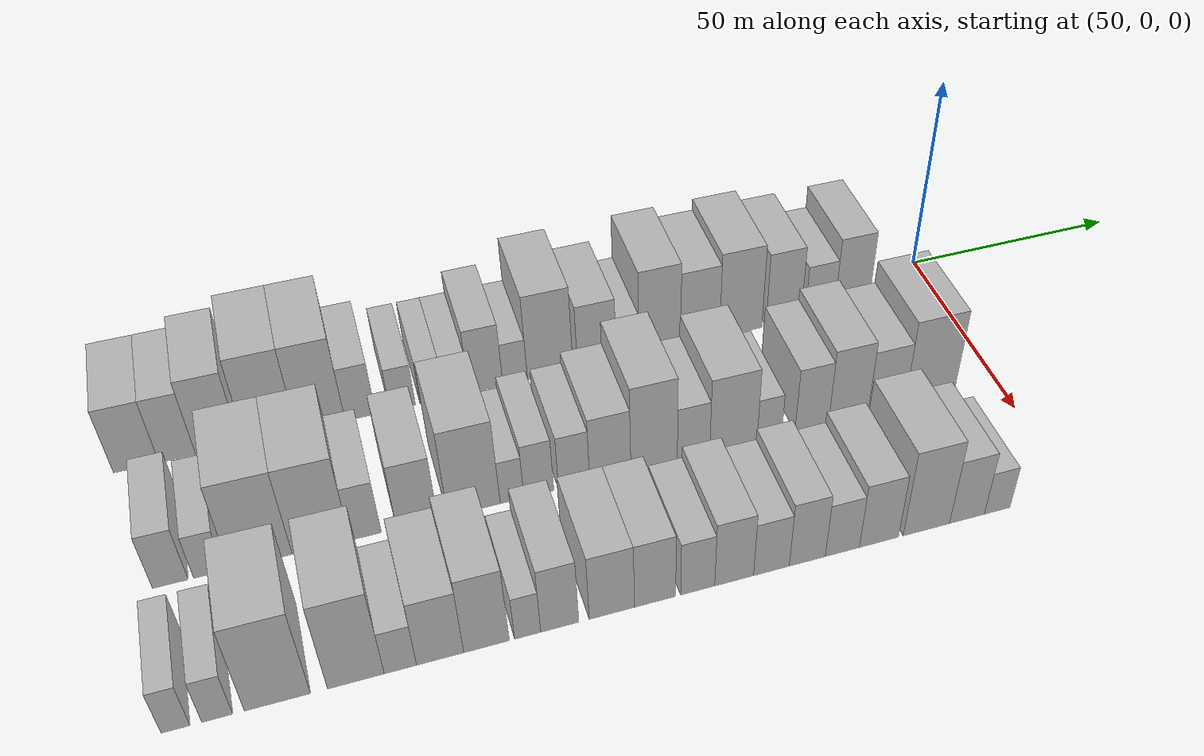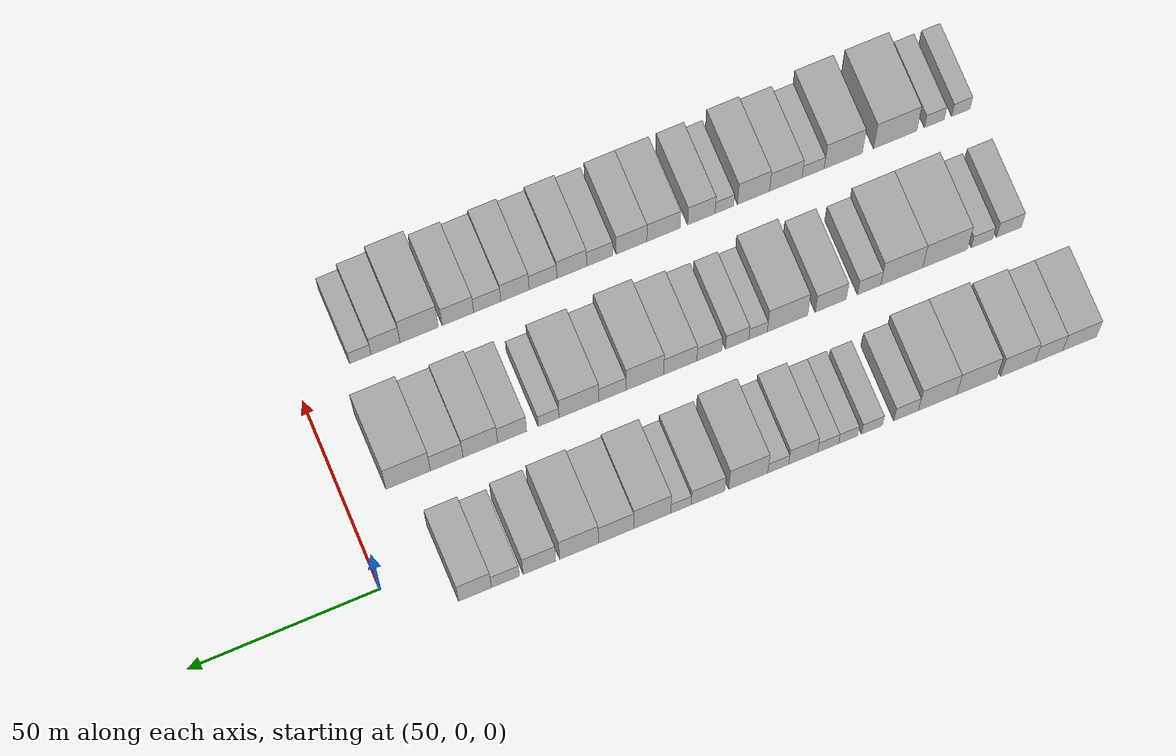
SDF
<sdf version="1.6">
 <world name="default">
  <model name="building_18">
   <static>1</static>
   <pose>50.0000 -178.7410 0 0.000000 0.000000 0.000000</pose>
   <link name="link">
    <pose>0 0 9.00 0 0 0</pose>
    <collision name="collision"><geometry><box><size>20.0000 8.9659 18.0000</size></box></geometry></collision>
    <visual name="visual">
     <cast_shadows>0</cast_shadows>
     <geometry><box><size>20.0000 8.9659 18.0000</size></box></geometry>
     <material>
      <script>
       <uri>model://HANNAS_wall/materials/scripts</uri>
       <uri>model://HANNAS_wall/materials/textures</uri>
       <name>vrc/HANNAS_wall</name>
      </script>
     </material>
    </visual>
   </link>
  </model>
  <model name="building_19">
   <static>1</static>
   <pose>50.0000 -170.5910 0 0.000000 0.000000 0.000000</pose>
   <link name="link">
    <pose>0 0 9.00 0 0 0</pose>
    <collision name="collision"><geometry><box><size>20.0000 7.3341 18.0000</size></box></geometry></collision>
    <visual name="visual">
     <cast_shadows>0</cast_shadows>
     <geometry><box><size>20.0000 7.3341 18.0000</size></box></geometry>
     <material>
      <script>
       <uri>model://HANNAS_wall/materials/scripts</uri>
       <uri>model://HANNAS_wall/materials/textures</uri>
       <name>vrc/HANNAS_wall</name>
      </script>
     </material>
    </visual>
   </link>
  </model>
  <model name="building_20">
   <static>1</static>
   <pose>50.0000 -162.3846 0 0.000000 0.000000 0.000000</pose>
   <link name="link">
    <pose>0 0 10.50 0 0 0</pose>
    <collision name="collision"><geometry><box><size>20.0000 9.0788 21.0000</size></box></geometry></collision>
    <visual name="visual">
     <cast_shadows>0</cast_shadows>
     <geometry><box><size>20.0000 9.0788 21.0000</size></box></geometry>
     <material>
      <script>
       <uri>model://HANNAS_wall/materials/scripts</uri>
       <uri>model://HANNAS_wall/materials/textures</uri>
       <name>vrc/HANNAS_wall</name>
      </script>
     </material>
    </visual>
   </link>
  </model>
  <model name="building_21">
   <static>1</static>
   <pose>50.0000 -151.5505 0 0.000000 0.000000 0.000000</pose>
   <link name="link">
    <pose>0 0 12.00 0 0 0</pose>
    <collision name="collision"><geometry><box><size>20.0000 10.5892 24.0000</size></box></geometry></collision>
    <visual name="visual">
     <cast_shadows>0</cast_shadows>
     <geometry><box><size>20.0000 10.5892 24.0000</size></box></geometry>
     <material>
      <script>
       <uri>model://HANNAS_wall/materials/scripts</uri>
       <uri>model://HANNAS_wall/materials/textures</uri>
       <name>vrc/HANNAS_wall</name>
      </script>
     </material>
    </visual>
   </link>
  </model>
  <model name="building_22">
   <static>1</static>
   <pose>50.0000 -141.2059 0 0.000000 0.000000 0.000000</pose>
   <link name="link">
    <pose>0 0 12.00 0 0 0</pose>
    <collision name="collision"><geometry><box><size>20.0000 10.1000 24.0000</size></box></geometry></collision>
    <visual name="visual">
     <cast_shadows>0</cast_shadows>
     <geometry><box><size>20.0000 10.1000 24.0000</size></box></geometry>
     <material>
      <script>
       <uri>model://HANNAS_wall/materials/scripts</uri>
       <uri>model://HANNAS_wall/materials/textures</uri>
       <name>vrc/HANNAS_wall</name>
      </script>
     </material>
    </visual>
   </link>
  </model>
  <model name="building_23">
   <static>1</static>
   <pose>50.0000 -132.9328 0 0.000000 0.000000 0.000000</pose>
   <link name="link">
    <pose>0 0 7.50 0 0 0</pose>
    <collision name="collision"><geometry><box><size>20.0000 6.4463 15.0000</size></box></geometry></collision>
    <visual name="visual">
     <cast_shadows>0</cast_shadows>
     <geometry><box><size>20.0000 6.4463 15.0000</size></box></geometry>
     <material>
      <script>
       <uri>model://HANNAS_wall/materials/scripts</uri>
       <uri>model://HANNAS_wall/materials/textures</uri>
       <name>vrc/HANNAS_wall</name>
      </script>
     </material>
    </visual>
   </link>
  </model>
  <model name="building_24">
   <static>1</static>
   <pose>50.0000 -123.9545 0 0.000000 0.000000 0.000000</pose>
   <link name="link">
    <pose>0 0 6.00 0 0 0</pose>
    <collision name="collision"><geometry><box><size>20.0000 5.5104 12.0000</size></box></geometry></collision>
    <visual name="visual">
     <cast_shadows>0</cast_shadows>
     <geometry><box><size>20.0000 5.5104 12.0000</size></box></geometry>
     <material>
      <script>
       <uri>model://HANNAS_wall/materials/scripts</uri>
       <uri>model://HANNAS_wall/materials/textures</uri>
       <name>vrc/HANNAS_wall</name>
      </script>
     </material>
    </visual>
   </link>
  </model>
  <model name="building_25">
   <static>1</static>
   <pose>50.0000 -117.6842 0 0.000000 0.000000 0.000000</pose>
   <link name="link">
    <pose>0 0 6.00 0 0 0</pose>
    <collision name="collision"><geometry><box><size>20.0000 5.0301 12.0000</size></box></geometry></collision>
    <visual name="visual">
     <cast_shadows>0</cast_shadows>
     <geometry><box><size>20.0000 5.0301 12.0000</size></box></geometry>
     <material>
      <script>
       <uri>model://HANNAS_wall/materials/scripts</uri>
       <uri>model://HANNAS_wall/materials/textures</uri>
       <name>vrc/HANNAS_wall</name>
      </script>
     </material>
    </visual>
   </link>
  </model>
  <model name="building_26">
   <static>1</static>
   <pose>50.0000 -112.3995 0 0.000000 0.000000 0.000000</pose>
   <link name="link">
    <pose>0 0 6.00 0 0 0</pose>
    <collision name="collision"><geometry><box><size>20.0000 5.5393 12.0000</size></box></geometry></collision>
    <visual name="visual">
     <cast_shadows>0</cast_shadows>
     <geometry><box><size>20.0000 5.5393 12.0000</size></box></geometry>
     <material>
      <script>
       <uri>model://HANNAS_wall/materials/scripts</uri>
       <uri>model://HANNAS_wall/materials/textures</uri>
       <name>vrc/HANNAS_wall</name>
      </script>
     </material>
    </visual>
   </link>
  </model>
  <model name="building_27">
   <static>1</static>
   <pose>50.0000 -105.8643 0 0.000000 0.000000 0.000000</pose>
   <link name="link">
    <pose>0 0 9.00 0 0 0</pose>
    <collision name="collision"><geometry><box><size>20.0000 7.5312 18.0000</size></box></geometry></collision>
    <visual name="visual">
     <cast_shadows>0</cast_shadows>
     <geometry><box><size>20.0000 7.5312 18.0000</size></box></geometry>
     <material>
      <script>
       <uri>model://HANNAS_wall/materials/scripts</uri>
       <uri>model://HANNAS_wall/materials/textures</uri>
       <name>vrc/HANNAS_wall</name>
      </script>
     </material>
    </visual>
   </link>
  </model>
  <model name="building_28">
   <static>1</static>
   <pose>50.0000 -99.3630 0 0.000000 0.000000 0.000000</pose>
   <link name="link">
    <pose>0 0 6.00 0 0 0</pose>
    <collision name="collision"><geometry><box><size>20.0000 5.4712 12.0000</size></box></geometry></collision>
    <visual name="visual">
     <cast_shadows>0</cast_shadows>
     <geometry><box><size>20.0000 5.4712 12.0000</size></box></geometry>
     <material>
      <script>
       <uri>model://HANNAS_wall/materials/scripts</uri>
       <uri>model://HANNAS_wall/materials/textures</uri>
       <name>vrc/HANNAS_wall</name>
      </script>
     </material>
    </visual>
   </link>
  </model>
  <model name="building_29">
   <static>1</static>
   <pose>50.0000 -91.5190 0 0.000000 0.000000 0.000000</pose>
   <link name="link">
    <pose>0 0 12.00 0 0 0</pose>
    <collision name="collision"><geometry><box><size>20.0000 10.2168 24.0000</size></box></geometry></collision>
    <visual name="visual">
     <cast_shadows>0</cast_shadows>
     <geometry><box><size>20.0000 10.2168 24.0000</size></box></geometry>
     <material>
      <script>
       <uri>model://HANNAS_wall/materials/scripts</uri>
       <uri>model://HANNAS_wall/materials/textures</uri>
       <name>vrc/HANNAS_wall</name>
      </script>
     </material>
    </visual>
   </link>
  </model>
  <model name="building_30">
   <static>1</static>
   <pose>50.0000 -80.9997 0 0.000000 0.000000 0.000000</pose>
   <link name="link">
    <pose>0 0 9.00 0 0 0</pose>
    <collision name="collision"><geometry><box><size>20.0000 8.8217 18.0000</size></box></geometry></collision>
    <visual name="visual">
     <cast_shadows>0</cast_shadows>
     <geometry><box><size>20.0000 8.8217 18.0000</size></box></geometry>
     <material>
      <script>
       <uri>model://HANNAS_wall/materials/scripts</uri>
       <uri>model://HANNAS_wall/materials/textures</uri>
       <name>vrc/HANNAS_wall</name>
      </script>
     </material>
    </visual>
   </link>
  </model>
  <model name="building_31">
   <static>1</static>
   <pose>50.0000 -73.9480 0 0.000000 0.000000 0.000000</pose>
   <link name="link">
    <pose>0 0 6.00 0 0 0</pose>
    <collision name="collision"><geometry><box><size>20.0000 5.2818 12.0000</size></box></geometry></collision>
    <visual name="visual">
     <cast_shadows>0</cast_shadows>
     <geometry><box><size>20.0000 5.2818 12.0000</size></box></geometry>
     <material>
      <script>
       <uri>model://HANNAS_wall/materials/scripts</uri>
       <uri>model://HANNAS_wall/materials/textures</uri>
       <name>vrc/HANNAS_wall</name>
      </script>
     </material>
    </visual>
   </link>
  </model>
  <model name="building_32">
   <static>1</static>
   <pose>50.0000 -66.4637 0 0.000000 0.000000 0.000000</pose>
   <link name="link">
    <pose>0 0 12.00 0 0 0</pose>
    <collision name="collision"><geometry><box><size>20.0000 9.6868 24.0000</size></box></geometry></collision>
    <visual name="visual">
     <cast_shadows>0</cast_shadows>
     <geometry><box><size>20.0000 9.6868 24.0000</size></box></geometry>
     <material>
      <script>
       <uri>model://HANNAS_wall/materials/scripts</uri>
       <uri>model://HANNAS_wall/materials/textures</uri>
       <name>vrc/HANNAS_wall</name>
      </script>
     </material>
    </visual>
   </link>
  </model>
  <model name="building_33">
   <static>1</static>
   <pose>50.0000 -57.0321 0 0.000000 0.000000 0.000000</pose>
   <link name="link">
    <pose>0 0 10.50 0 0 0</pose>
    <collision name="collision"><geometry><box><size>20.0000 9.1765 21.0000</size></box></geometry></collision>
    <visual name="visual">
     <cast_shadows>0</cast_shadows>
     <geometry><box><size>20.0000 9.1765 21.0000</size></box></geometry>
     <material>
      <script>
       <uri>model://HANNAS_wall/materials/scripts</uri>
       <uri>model://HANNAS_wall/materials/textures</uri>
       <name>vrc/HANNAS_wall</name>
      </script>
     </material>
    </visual>
   </link>
  </model>
  <model name="building_34">
   <static>1</static>
   <pose>50.0000 -47.3731 0 0.000000 0.000000 0.000000</pose>
   <link name="link">
    <pose>0 0 12.00 0 0 0</pose>
    <collision name="collision"><geometry><box><size>20.0000 10.1416 24.0000</size></box></geometry></collision>
    <visual name="visual">
     <cast_shadows>0</cast_shadows>
     <geometry><box><size>20.0000 10.1416 24.0000</size></box></geometry>
     <material>
      <script>
       <uri>model://HANNAS_wall/materials/scripts</uri>
       <uri>model://HANNAS_wall/materials/textures</uri>
       <name>vrc/HANNAS_wall</name>
      </script>
     </material>
    </visual>
   </link>
  </model>
  <model name="building_35">
   <static>1</static>
   <pose>50.0000 -37.0855 0 0.000000 0.000000 0.000000</pose>
   <link name="link">
    <pose>0 0 10.50 0 0 0</pose>
    <collision name="collision"><geometry><box><size>20.0000 8.4335 21.0000</size></box></geometry></collision>
    <visual name="visual">
     <cast_shadows>0</cast_shadows>
     <geometry><box><size>20.0000 8.4335 21.0000</size></box></geometry>
     <material>
      <script>
       <uri>model://HANNAS_wall/materials/scripts</uri>
       <uri>model://HANNAS_wall/materials/textures</uri>
       <name>vrc/HANNAS_wall</name>
      </script>
     </material>
    </visual>
   </link>
  </model>
  <model name="building_36">
   <static>1</static>
   <pose>50.0000 -28.2381 0 0.000000 0.000000 0.000000</pose>
   <link name="link">
    <pose>0 0 7.50 0 0 0</pose>
    <collision name="collision"><geometry><box><size>20.0000 7.2613 15.0000</size></box></geometry></collision>
    <visual name="visual">
     <cast_shadows>0</cast_shadows>
     <geometry><box><size>20.0000 7.2613 15.0000</size></box></geometry>
     <material>
      <script>
       <uri>model://HANNAS_wall/materials/scripts</uri>
       <uri>model://HANNAS_wall/materials/textures</uri>
       <name>vrc/HANNAS_wall</name>
      </script>
     </material>
    </visual>
   </link>
  </model>
  <model name="building_37">
   <static>1</static>
   <pose>50.0000 -20.3422 0 0.000000 0.000000 0.000000</pose>
   <link name="link">
    <pose>0 0 10.50 0 0 0</pose>
    <collision name="collision"><geometry><box><size>20.0000 8.5304 21.0000</size></box></geometry></collision>
    <visual name="visual">
     <cast_shadows>0</cast_shadows>
     <geometry><box><size>20.0000 8.5304 21.0000</size></box></geometry>
     <material>
      <script>
       <uri>model://HANNAS_wall/materials/scripts</uri>
       <uri>model://HANNAS_wall/materials/textures</uri>
       <name>vrc/HANNAS_wall</name>
      </script>
     </material>
    </visual>
   </link>
  </model>
  <model name="building_97">
   <static>1</static>
   <pose>82.0000 -174.0502 0 0.000000 0.000000 0.000000</pose>
   <link name="link">
    <pose>0 0 7.50 0 0 0</pose>
    <collision name="collision"><geometry><box><size>20.0000 6.5827 15.0000</size></box></geometry></collision>
    <visual name="visual">
     <cast_shadows>0</cast_shadows>
     <geometry><box><size>20.0000 6.5827 15.0000</size></box></geometry>
     <material>
      <script>
       <uri>model://HANNAS_wall/materials/scripts</uri>
       <uri>model://HANNAS_wall/materials/textures</uri>
       <name>vrc/HANNAS_wall</name>
      </script>
     </material>
    </visual>
   </link>
  </model>
  <model name="building_98">
   <static>1</static>
   <pose>82.0000 -166.9105 0 0.000000 0.000000 0.000000</pose>
   <link name="link">
    <pose>0 0 6.00 0 0 0</pose>
    <collision name="collision"><geometry><box><size>20.0000 5.6967 12.0000</size></box></geometry></collision>
    <visual name="visual">
     <cast_shadows>0</cast_shadows>
     <geometry><box><size>20.0000 5.6967 12.0000</size></box></geometry>
     <material>
      <script>
       <uri>model://HANNAS_wall/materials/scripts</uri>
       <uri>model://HANNAS_wall/materials/textures</uri>
       <name>vrc/HANNAS_wall</name>
      </script>
     </material>
    </visual>
   </link>
  </model>
  <model name="building_99">
   <static>1</static>
   <pose>82.0000 -157.1421 0 0.000000 0.000000 0.000000</pose>
   <link name="link">
    <pose>0 0 12.00 0 0 0</pose>
    <collision name="collision"><geometry><box><size>20.0000 11.8400 24.0000</size></box></geometry></collision>
    <visual name="visual">
     <cast_shadows>0</cast_shadows>
     <geometry><box><size>20.0000 11.8400 24.0000</size></box></geometry>
     <material>
      <script>
       <uri>model://HANNAS_wall/materials/scripts</uri>
       <uri>model://HANNAS_wall/materials/textures</uri>
       <name>vrc/HANNAS_wall</name>
      </script>
     </material>
    </visual>
   </link>
  </model>
  <model name="building_100">
   <static>1</static>
   <pose>82.0000 -145.6631 0 0.000000 0.000000 0.000000</pose>
   <link name="link">
    <pose>0 0 12.00 0 0 0</pose>
    <collision name="collision"><geometry><box><size>20.0000 11.1180 24.0000</size></box></geometry></collision>
    <visual name="visual">
     <cast_shadows>0</cast_shadows>
     <geometry><box><size>20.0000 11.1180 24.0000</size></box></geometry>
     <material>
      <script>
       <uri>model://HANNAS_wall/materials/scripts</uri>
       <uri>model://HANNAS_wall/materials/textures</uri>
       <name>vrc/HANNAS_wall</name>
      </script>
     </material>
    </visual>
   </link>
  </model>
  <model name="building_101">
   <static>1</static>
   <pose>82.0000 -137.0362 0 0.000000 0.000000 0.000000</pose>
   <link name="link">
    <pose>0 0 7.50 0 0 0</pose>
    <collision name="collision"><geometry><box><size>20.0000 6.1358 15.0000</size></box></geometry></collision>
    <visual name="visual">
     <cast_shadows>0</cast_shadows>
     <geometry><box><size>20.0000 6.1358 15.0000</size></box></geometry>
     <material>
      <script>
       <uri>model://HANNAS_wall/materials/scripts</uri>
       <uri>model://HANNAS_wall/materials/textures</uri>
       <name>vrc/HANNAS_wall</name>
      </script>
     </material>
    </visual>
   </link>
  </model>
  <model name="building_102">
   <static>1</static>
   <pose>82.0000 -126.8922 0 0.000000 0.000000 0.000000</pose>
   <link name="link">
    <pose>0 0 9.00 0 0 0</pose>
    <collision name="collision"><geometry><box><size>20.0000 8.1523 18.0000</size></box></geometry></collision>
    <visual name="visual">
     <cast_shadows>0</cast_shadows>
     <geometry><box><size>20.0000 8.1523 18.0000</size></box></geometry>
     <material>
      <script>
       <uri>model://HANNAS_wall/materials/scripts</uri>
       <uri>model://HANNAS_wall/materials/textures</uri>
       <name>vrc/HANNAS_wall</name>
      </script>
     </material>
    </visual>
   </link>
  </model>
  <model name="building_103">
   <static>1</static>
   <pose>82.0000 -115.4886 0 0.000000 0.000000 0.000000</pose>
   <link name="link">
    <pose>0 0 12.00 0 0 0</pose>
    <collision name="collision"><geometry><box><size>20.0000 10.6550 24.0000</size></box></geometry></collision>
    <visual name="visual">
     <cast_shadows>0</cast_shadows>
     <geometry><box><size>20.0000 10.6550 24.0000</size></box></geometry>
     <material>
      <script>
       <uri>model://HANNAS_wall/materials/scripts</uri>
       <uri>model://HANNAS_wall/materials/textures</uri>
       <name>vrc/HANNAS_wall</name>
      </script>
     </material>
    </visual>
   </link>
  </model>
  <model name="building_104">
   <static>1</static>
   <pose>82.0000 -107.7419 0 0.000000 0.000000 0.000000</pose>
   <link name="link">
    <pose>0 0 6.00 0 0 0</pose>
    <collision name="collision"><geometry><box><size>20.0000 4.8385 12.0000</size></box></geometry></collision>
    <visual name="visual">
     <cast_shadows>0</cast_shadows>
     <geometry><box><size>20.0000 4.8385 12.0000</size></box></geometry>
     <material>
      <script>
       <uri>model://HANNAS_wall/materials/scripts</uri>
       <uri>model://HANNAS_wall/materials/textures</uri>
       <name>vrc/HANNAS_wall</name>
      </script>
     </material>
    </visual>
   </link>
  </model>
  <model name="building_105">
   <static>1</static>
   <pose>82.0000 -102.2460 0 0.000000 0.000000 0.000000</pose>
   <link name="link">
    <pose>0 0 7.50 0 0 0</pose>
    <collision name="collision"><geometry><box><size>20.0000 6.1531 15.0000</size></box></geometry></collision>
    <visual name="visual">
     <cast_shadows>0</cast_shadows>
     <geometry><box><size>20.0000 6.1531 15.0000</size></box></geometry>
     <material>
      <script>
       <uri>model://HANNAS_wall/materials/scripts</uri>
       <uri>model://HANNAS_wall/materials/textures</uri>
       <name>vrc/HANNAS_wall</name>
      </script>
     </material>
    </visual>
   </link>
  </model>
  <model name="building_106">
   <static>1</static>
   <pose>82.0000 -94.9185 0 0.000000 0.000000 0.000000</pose>
   <link name="link">
    <pose>0 0 7.50 0 0 0</pose>
    <collision name="collision"><geometry><box><size>20.0000 6.5019 15.0000</size></box></geometry></collision>
    <visual name="visual">
     <cast_shadows>0</cast_shadows>
     <geometry><box><size>20.0000 6.5019 15.0000</size></box></geometry>
     <material>
      <script>
       <uri>model://HANNAS_wall/materials/scripts</uri>
       <uri>model://HANNAS_wall/materials/textures</uri>
       <name>vrc/HANNAS_wall</name>
      </script>
     </material>
    </visual>
   </link>
  </model>
  <model name="building_107">
   <static>1</static>
   <pose>82.0000 -87.3097 0 0.000000 0.000000 0.000000</pose>
   <link name="link">
    <pose>0 0 9.00 0 0 0</pose>
    <collision name="collision"><geometry><box><size>20.0000 8.7157 18.0000</size></box></geometry></collision>
    <visual name="visual">
     <cast_shadows>0</cast_shadows>
     <geometry><box><size>20.0000 8.7157 18.0000</size></box></geometry>
     <material>
      <script>
       <uri>model://HANNAS_wall/materials/scripts</uri>
       <uri>model://HANNAS_wall/materials/textures</uri>
       <name>vrc/HANNAS_wall</name>
      </script>
     </material>
    </visual>
   </link>
  </model>
  <model name="building_108">
   <static>1</static>
   <pose>82.0000 -77.9905 0 0.000000 0.000000 0.000000</pose>
   <link name="link">
    <pose>0 0 12.00 0 0 0</pose>
    <collision name="collision"><geometry><box><size>20.0000 9.9226 24.0000</size></box></geometry></collision>
    <visual name="visual">
     <cast_shadows>0</cast_shadows>
     <geometry><box><size>20.0000 9.9226 24.0000</size></box></geometry>
     <material>
      <script>
       <uri>model://HANNAS_wall/materials/scripts</uri>
       <uri>model://HANNAS_wall/materials/textures</uri>
       <name>vrc/HANNAS_wall</name>
      </script>
     </material>
    </visual>
   </link>
  </model>
  <model name="building_109">
   <static>1</static>
   <pose>82.0000 -69.5090 0 0.000000 0.000000 0.000000</pose>
   <link name="link">
    <pose>0 0 7.50 0 0 0</pose>
    <collision name="collision"><geometry><box><size>20.0000 7.0404 15.0000</size></box></geometry></collision>
    <visual name="visual">
     <cast_shadows>0</cast_shadows>
     <geometry><box><size>20.0000 7.0404 15.0000</size></box></geometry>
     <material>
      <script>
       <uri>model://HANNAS_wall/materials/scripts</uri>
       <uri>model://HANNAS_wall/materials/textures</uri>
       <name>vrc/HANNAS_wall</name>
      </script>
     </material>
    </visual>
   </link>
  </model>
  <model name="building_110">
   <static>1</static>
   <pose>82.0000 -60.7743 0 0.000000 0.000000 0.000000</pose>
   <link name="link">
    <pose>0 0 10.50 0 0 0</pose>
    <collision name="collision"><geometry><box><size>20.0000 10.4289 21.0000</size></box></geometry></collision>
    <visual name="visual">
     <cast_shadows>0</cast_shadows>
     <geometry><box><size>20.0000 10.4289 21.0000</size></box></geometry>
     <material>
      <script>
       <uri>model://HANNAS_wall/materials/scripts</uri>
       <uri>model://HANNAS_wall/materials/textures</uri>
       <name>vrc/HANNAS_wall</name>
      </script>
     </material>
    </visual>
   </link>
  </model>
  <model name="building_111">
   <static>1</static>
   <pose>82.0000 -52.8183 0 0.000000 0.000000 0.000000</pose>
   <link name="link">
    <pose>0 0 6.00 0 0 0</pose>
    <collision name="collision"><geometry><box><size>20.0000 5.4832 12.0000</size></box></geometry></collision>
    <visual name="visual">
     <cast_shadows>0</cast_shadows>
     <geometry><box><size>20.0000 5.4832 12.0000</size></box></geometry>
     <material>
      <script>
       <uri>model://HANNAS_wall/materials/scripts</uri>
       <uri>model://HANNAS_wall/materials/textures</uri>
       <name>vrc/HANNAS_wall</name>
      </script>
     </material>
    </visual>
   </link>
  </model>
  <model name="building_112">
   <static>1</static>
   <pose>82.0000 -43.2999 0 0.000000 0.000000 0.000000</pose>
   <link name="link">
    <pose>0 0 9.00 0 0 0</pose>
    <collision name="collision"><geometry><box><size>20.0000 7.5535 18.0000</size></box></geometry></collision>
    <visual name="visual">
     <cast_shadows>0</cast_shadows>
     <geometry><box><size>20.0000 7.5535 18.0000</size></box></geometry>
     <material>
      <script>
       <uri>model://HANNAS_wall/materials/scripts</uri>
       <uri>model://HANNAS_wall/materials/textures</uri>
       <name>vrc/HANNAS_wall</name>
      </script>
     </material>
    </visual>
   </link>
  </model>
  <model name="building_113">
   <static>1</static>
   <pose>82.0000 -35.0144 0 0.000000 0.000000 0.000000</pose>
   <link name="link">
    <pose>0 0 10.50 0 0 0</pose>
    <collision name="collision"><geometry><box><size>20.0000 9.0174 21.0000</size></box></geometry></collision>
    <visual name="visual">
     <cast_shadows>0</cast_shadows>
     <geometry><box><size>20.0000 9.0174 21.0000</size></box></geometry>
     <material>
      <script>
       <uri>model://HANNAS_wall/materials/scripts</uri>
       <uri>model://HANNAS_wall/materials/textures</uri>
       <name>vrc/HANNAS_wall</name>
      </script>
     </material>
    </visual>
   </link>
  </model>
  <model name="building_114">
   <static>1</static>
   <pose>82.0000 -26.2399 0 0.000000 0.000000 0.000000</pose>
   <link name="link">
    <pose>0 0 9.00 0 0 0</pose>
    <collision name="collision"><geometry><box><size>20.0000 8.5317 18.0000</size></box></geometry></collision>
    <visual name="visual">
     <cast_shadows>0</cast_shadows>
     <geometry><box><size>20.0000 8.5317 18.0000</size></box></geometry>
     <material>
      <script>
       <uri>model://HANNAS_wall/materials/scripts</uri>
       <uri>model://HANNAS_wall/materials/textures</uri>
       <name>vrc/HANNAS_wall</name>
      </script>
     </material>
    </visual>
   </link>
  </model>
  <model name="building_115">
   <static>1</static>
   <pose>82.0000 -16.1670 0 0.000000 0.000000 0.000000</pose>
   <link name="link">
    <pose>0 0 12.00 0 0 0</pose>
    <collision name="collision"><geometry><box><size>20.0000 11.6140 24.0000</size></box></geometry></collision>
    <visual name="visual">
     <cast_shadows>0</cast_shadows>
     <geometry><box><size>20.0000 11.6140 24.0000</size></box></geometry>
     <material>
      <script>
       <uri>model://HANNAS_wall/materials/scripts</uri>
       <uri>model://HANNAS_wall/materials/textures</uri>
       <name>vrc/HANNAS_wall</name>
      </script>
     </material>
    </visual>
   </link>
  </model>
  <model name="building_176">
   <static>1</static>
   <pose>114.0000 -175.2662 0 0.000000 0.000000 0.000000</pose>
   <link name="link">
    <pose>0 0 6.00 0 0 0</pose>
    <collision name="collision"><geometry><box><size>20.0000 4.8760 12.0000</size></box></geometry></collision>
    <visual name="visual">
     <cast_shadows>0</cast_shadows>
     <geometry><box><size>20.0000 4.8760 12.0000</size></box></geometry>
     <material>
      <script>
       <uri>model://HANNAS_wall/materials/scripts</uri>
       <uri>model://HANNAS_wall/materials/textures</uri>
       <name>vrc/HANNAS_wall</name>
      </script>
     </material>
    </visual>
   </link>
  </model>
  <model name="building_177">
   <static>1</static>
   <pose>114.0000 -168.1860 0 0.000000 0.000000 0.000000</pose>
   <link name="link">
    <pose>0 0 6.00 0 0 0</pose>
    <collision name="collision"><geometry><box><size>20.0000 5.2844 12.0000</size></box></geometry></collision>
    <visual name="visual">
     <cast_shadows>0</cast_shadows>
     <geometry><box><size>20.0000 5.2844 12.0000</size></box></geometry>
     <material>
      <script>
       <uri>model://HANNAS_wall/materials/scripts</uri>
       <uri>model://HANNAS_wall/materials/textures</uri>
       <name>vrc/HANNAS_wall</name>
      </script>
     </material>
    </visual>
   </link>
  </model>
  <model name="building_178">
   <static>1</static>
   <pose>114.0000 -157.7895 0 0.000000 0.000000 0.000000</pose>
   <link name="link">
    <pose>0 0 12.00 0 0 0</pose>
    <collision name="collision"><geometry><box><size>20.0000 11.5085 24.0000</size></box></geometry></collision>
    <visual name="visual">
     <cast_shadows>0</cast_shadows>
     <geometry><box><size>20.0000 11.5085 24.0000</size></box></geometry>
     <material>
      <script>
       <uri>model://HANNAS_wall/materials/scripts</uri>
       <uri>model://HANNAS_wall/materials/textures</uri>
       <name>vrc/HANNAS_wall</name>
      </script>
     </material>
    </visual>
   </link>
  </model>
  <model name="building_179">
   <static>1</static>
   <pose>114.0000 -143.9739 0 0.000000 0.000000 0.000000</pose>
   <link name="link">
    <pose>0 0 12.00 0 0 0</pose>
    <collision name="collision"><geometry><box><size>20.0000 10.1229 24.0000</size></box></geometry></collision>
    <visual name="visual">
     <cast_shadows>0</cast_shadows>
     <geometry><box><size>20.0000 10.1229 24.0000</size></box></geometry>
     <material>
      <script>
       <uri>model://HANNAS_wall/materials/scripts</uri>
       <uri>model://HANNAS_wall/materials/textures</uri>
       <name>vrc/HANNAS_wall</name>
      </script>
     </material>
    </visual>
   </link>
  </model>
  <model name="building_180">
   <static>1</static>
   <pose>114.0000 -135.9891 0 0.000000 0.000000 0.000000</pose>
   <link name="link">
    <pose>0 0 6.00 0 0 0</pose>
    <collision name="collision"><geometry><box><size>20.0000 5.8466 12.0000</size></box></geometry></collision>
    <visual name="visual">
     <cast_shadows>0</cast_shadows>
     <geometry><box><size>20.0000 5.8466 12.0000</size></box></geometry>
     <material>
      <script>
       <uri>model://HANNAS_wall/materials/scripts</uri>
       <uri>model://HANNAS_wall/materials/textures</uri>
       <name>vrc/HANNAS_wall</name>
      </script>
     </material>
    </visual>
   </link>
  </model>
  <model name="building_181">
   <static>1</static>
   <pose>114.0000 -128.7494 0 0.000000 0.000000 0.000000</pose>
   <link name="link">
    <pose>0 0 9.00 0 0 0</pose>
    <collision name="collision"><geometry><box><size>20.0000 8.6329 18.0000</size></box></geometry></collision>
    <visual name="visual">
     <cast_shadows>0</cast_shadows>
     <geometry><box><size>20.0000 8.6329 18.0000</size></box></geometry>
     <material>
      <script>
       <uri>model://HANNAS_wall/materials/scripts</uri>
       <uri>model://HANNAS_wall/materials/textures</uri>
       <name>vrc/HANNAS_wall</name>
      </script>
     </material>
    </visual>
   </link>
  </model>
  <model name="building_182">
   <static>1</static>
   <pose>114.0000 -120.2027 0 0.000000 0.000000 0.000000</pose>
   <link name="link">
    <pose>0 0 10.50 0 0 0</pose>
    <collision name="collision"><geometry><box><size>20.0000 8.4604 21.0000</size></box></geometry></collision>
    <visual name="visual">
     <cast_shadows>0</cast_shadows>
     <geometry><box><size>20.0000 8.4604 21.0000</size></box></geometry>
     <material>
      <script>
       <uri>model://HANNAS_wall/materials/scripts</uri>
       <uri>model://HANNAS_wall/materials/textures</uri>
       <name>vrc/HANNAS_wall</name>
      </script>
     </material>
    </visual>
   </link>
  </model>
  <model name="building_183">
   <static>1</static>
   <pose>114.0000 -112.5079 0 0.000000 0.000000 0.000000</pose>
   <link name="link">
    <pose>0 0 6.00 0 0 0</pose>
    <collision name="collision"><geometry><box><size>20.0000 4.9292 12.0000</size></box></geometry></collision>
    <visual name="visual">
     <cast_shadows>0</cast_shadows>
     <geometry><box><size>20.0000 4.9292 12.0000</size></box></geometry>
     <material>
      <script>
       <uri>model://HANNAS_wall/materials/scripts</uri>
       <uri>model://HANNAS_wall/materials/textures</uri>
       <name>vrc/HANNAS_wall</name>
      </script>
     </material>
    </visual>
   </link>
  </model>
  <model name="building_184">
   <static>1</static>
   <pose>114.0000 -106.4255 0 0.000000 0.000000 0.000000</pose>
   <link name="link">
    <pose>0 0 9.00 0 0 0</pose>
    <collision name="collision"><geometry><box><size>20.0000 7.2356 18.0000</size></box></geometry></collision>
    <visual name="visual">
     <cast_shadows>0</cast_shadows>
     <geometry><box><size>20.0000 7.2356 18.0000</size></box></geometry>
     <material>
      <script>
       <uri>model://HANNAS_wall/materials/scripts</uri>
       <uri>model://HANNAS_wall/materials/textures</uri>
       <name>vrc/HANNAS_wall</name>
      </script>
     </material>
    </visual>
   </link>
  </model>
  <model name="building_185">
   <static>1</static>
   <pose>114.0000 -96.4215 0 0.000000 0.000000 0.000000</pose>
   <link name="link">
    <pose>0 0 9.00 0 0 0</pose>
    <collision name="collision"><geometry><box><size>20.0000 8.7723 18.0000</size></box></geometry></collision>
    <visual name="visual">
     <cast_shadows>0</cast_shadows>
     <geometry><box><size>20.0000 8.7723 18.0000</size></box></geometry>
     <material>
      <script>
       <uri>model://HANNAS_wall/materials/scripts</uri>
       <uri>model://HANNAS_wall/materials/textures</uri>
       <name>vrc/HANNAS_wall</name>
      </script>
     </material>
    </visual>
   </link>
  </model>
  <model name="building_186">
   <static>1</static>
   <pose>114.0000 -88.0055 0 0.000000 0.000000 0.000000</pose>
   <link name="link">
    <pose>0 0 9.00 0 0 0</pose>
    <collision name="collision"><geometry><box><size>20.0000 8.0598 18.0000</size></box></geometry></collision>
    <visual name="visual">
     <cast_shadows>0</cast_shadows>
     <geometry><box><size>20.0000 8.0598 18.0000</size></box></geometry>
     <material>
      <script>
       <uri>model://HANNAS_wall/materials/scripts</uri>
       <uri>model://HANNAS_wall/materials/textures</uri>
       <name>vrc/HANNAS_wall</name>
      </script>
     </material>
    </visual>
   </link>
  </model>
  <model name="building_187">
   <static>1</static>
   <pose>114.0000 -79.5849 0 0.000000 0.000000 0.000000</pose>
   <link name="link">
    <pose>0 0 7.50 0 0 0</pose>
    <collision name="collision"><geometry><box><size>20.0000 6.7814 15.0000</size></box></geometry></collision>
    <visual name="visual">
     <cast_shadows>0</cast_shadows>
     <geometry><box><size>20.0000 6.7814 15.0000</size></box></geometry>
     <material>
      <script>
       <uri>model://HANNAS_wall/materials/scripts</uri>
       <uri>model://HANNAS_wall/materials/textures</uri>
       <name>vrc/HANNAS_wall</name>
      </script>
     </material>
    </visual>
   </link>
  </model>
  <model name="building_188">
   <static>1</static>
   <pose>114.0000 -72.2788 0 0.000000 0.000000 0.000000</pose>
   <link name="link">
    <pose>0 0 9.00 0 0 0</pose>
    <collision name="collision"><geometry><box><size>20.0000 7.8307 18.0000</size></box></geometry></collision>
    <visual name="visual">
     <cast_shadows>0</cast_shadows>
     <geometry><box><size>20.0000 7.8307 18.0000</size></box></geometry>
     <material>
      <script>
       <uri>model://HANNAS_wall/materials/scripts</uri>
       <uri>model://HANNAS_wall/materials/textures</uri>
       <name>vrc/HANNAS_wall</name>
      </script>
     </material>
    </visual>
   </link>
  </model>
  <model name="building_189">
   <static>1</static>
   <pose>114.0000 -64.7191 0 0.000000 0.000000 0.000000</pose>
   <link name="link">
    <pose>0 0 7.50 0 0 0</pose>
    <collision name="collision"><geometry><box><size>20.0000 7.2888 15.0000</size></box></geometry></collision>
    <visual name="visual">
     <cast_shadows>0</cast_shadows>
     <geometry><box><size>20.0000 7.2888 15.0000</size></box></geometry>
     <material>
      <script>
       <uri>model://HANNAS_wall/materials/scripts</uri>
       <uri>model://HANNAS_wall/materials/textures</uri>
       <name>vrc/HANNAS_wall</name>
      </script>
     </material>
    </visual>
   </link>
  </model>
  <model name="building_190">
   <static>1</static>
   <pose>114.0000 -57.3540 0 0.000000 0.000000 0.000000</pose>
   <link name="link">
    <pose>0 0 9.00 0 0 0</pose>
    <collision name="collision"><geometry><box><size>20.0000 7.4414 18.0000</size></box></geometry></collision>
    <visual name="visual">
     <cast_shadows>0</cast_shadows>
     <geometry><box><size>20.0000 7.4414 18.0000</size></box></geometry>
     <material>
      <script>
       <uri>model://HANNAS_wall/materials/scripts</uri>
       <uri>model://HANNAS_wall/materials/textures</uri>
       <name>vrc/HANNAS_wall</name>
      </script>
     </material>
    </visual>
   </link>
  </model>
  <model name="building_191">
   <static>1</static>
   <pose>114.0000 -50.0712 0 0.000000 0.000000 0.000000</pose>
   <link name="link">
    <pose>0 0 7.50 0 0 0</pose>
    <collision name="collision"><geometry><box><size>20.0000 7.1242 15.0000</size></box></geometry></collision>
    <visual name="visual">
     <cast_shadows>0</cast_shadows>
     <geometry><box><size>20.0000 7.1242 15.0000</size></box></geometry>
     <material>
      <script>
       <uri>model://HANNAS_wall/materials/scripts</uri>
       <uri>model://HANNAS_wall/materials/textures</uri>
       <name>vrc/HANNAS_wall</name>
      </script>
     </material>
    </visual>
   </link>
  </model>
  <model name="building_192">
   <static>1</static>
   <pose>114.0000 -42.3670 0 0.000000 0.000000 0.000000</pose>
   <link name="link">
    <pose>0 0 9.00 0 0 0</pose>
    <collision name="collision"><geometry><box><size>20.0000 8.2843 18.0000</size></box></geometry></collision>
    <visual name="visual">
     <cast_shadows>0</cast_shadows>
     <geometry><box><size>20.0000 8.2843 18.0000</size></box></geometry>
     <material>
      <script>
       <uri>model://HANNAS_wall/materials/scripts</uri>
       <uri>model://HANNAS_wall/materials/textures</uri>
       <name>vrc/HANNAS_wall</name>
      </script>
     </material>
    </visual>
   </link>
  </model>
  <model name="building_193">
   <static>1</static>
   <pose>114.0000 -32.2251 0 0.000000 0.000000 0.000000</pose>
   <link name="link">
    <pose>0 0 12.00 0 0 0</pose>
    <collision name="collision"><geometry><box><size>20.0000 9.9994 24.0000</size></box></geometry></collision>
    <visual name="visual">
     <cast_shadows>0</cast_shadows>
     <geometry><box><size>20.0000 9.9994 24.0000</size></box></geometry>
     <material>
      <script>
       <uri>model://HANNAS_wall/materials/scripts</uri>
       <uri>model://HANNAS_wall/materials/textures</uri>
       <name>vrc/HANNAS_wall</name>
      </script>
     </material>
    </visual>
   </link>
  </model>
  <model name="building_194">
   <static>1</static>
   <pose>114.0000 -23.4316 0 0.000000 0.000000 0.000000</pose>
   <link name="link">
    <pose>0 0 9.00 0 0 0</pose>
    <collision name="collision"><geometry><box><size>20.0000 7.5877 18.0000</size></box></geometry></collision>
    <visual name="visual">
     <cast_shadows>0</cast_shadows>
     <geometry><box><size>20.0000 7.5877 18.0000</size></box></geometry>
     <material>
      <script>
       <uri>model://HANNAS_wall/materials/scripts</uri>
       <uri>model://HANNAS_wall/materials/textures</uri>
       <name>vrc/HANNAS_wall</name>
      </script>
     </material>
    </visual>
   </link>
  </model>
  <model name="building_195">
   <static>1</static>
   <pose>114.0000 -16.8112 0 0.000000 0.000000 0.000000</pose>
   <link name="link">
    <pose>0 0 6.00 0 0 0</pose>
    <collision name="collision"><geometry><box><size>20.0000 5.6531 12.0000</size></box></geometry></collision>
    <visual name="visual">
     <cast_shadows>0</cast_shadows>
     <geometry><box><size>20.0000 5.6531 12.0000</size></box></geometry>
     <material>
      <script>
       <uri>model://HANNAS_wall/materials/scripts</uri>
       <uri>model://HANNAS_wall/materials/textures</uri>
       <name>vrc/HANNAS_wall</name>
      </script>
     </material>
    </visual>
   </link>
  </model>
 </world>
</sdf>
